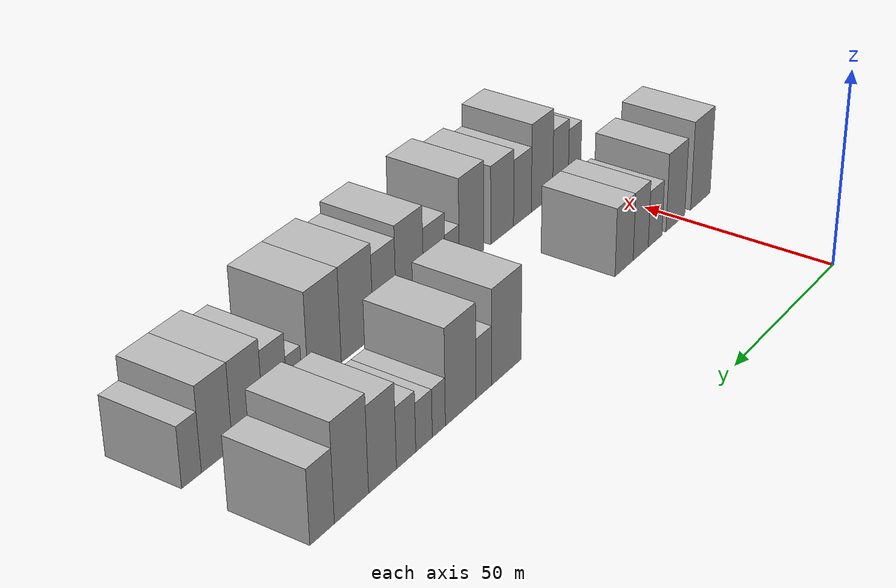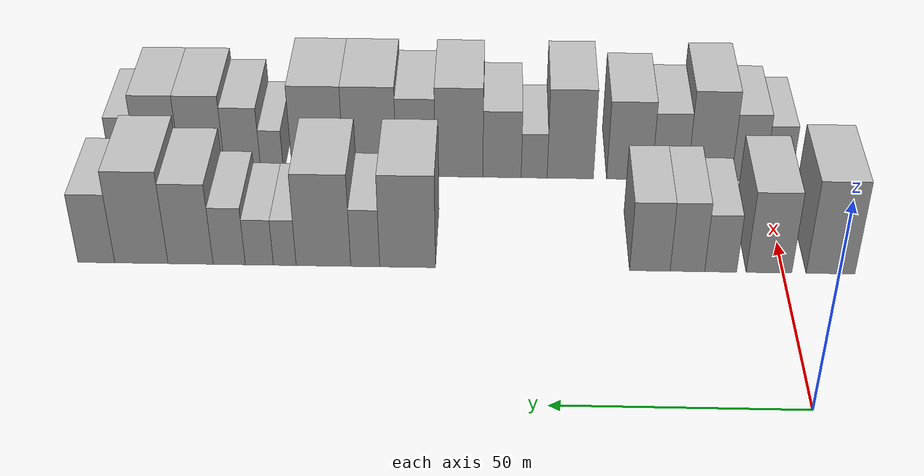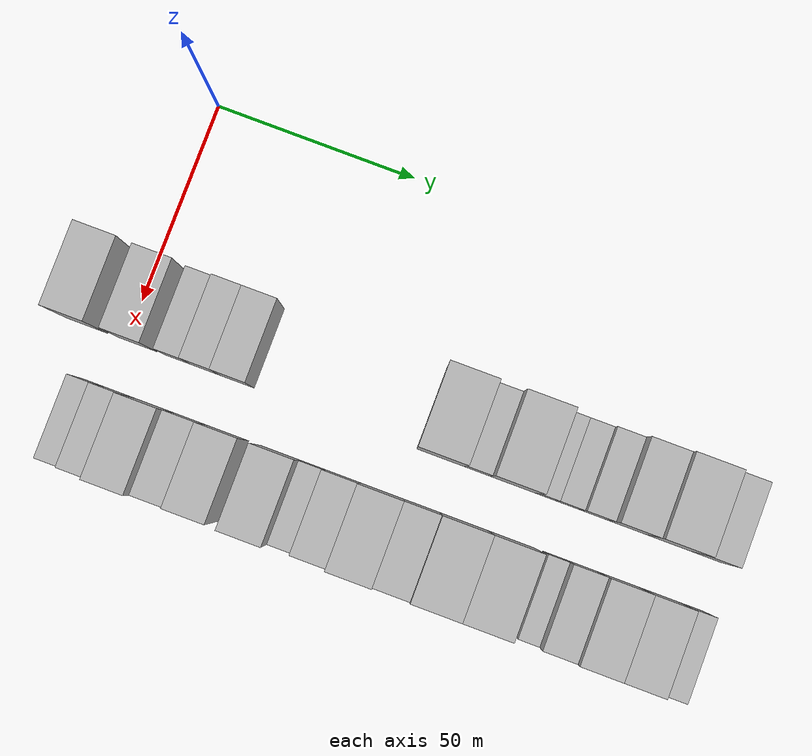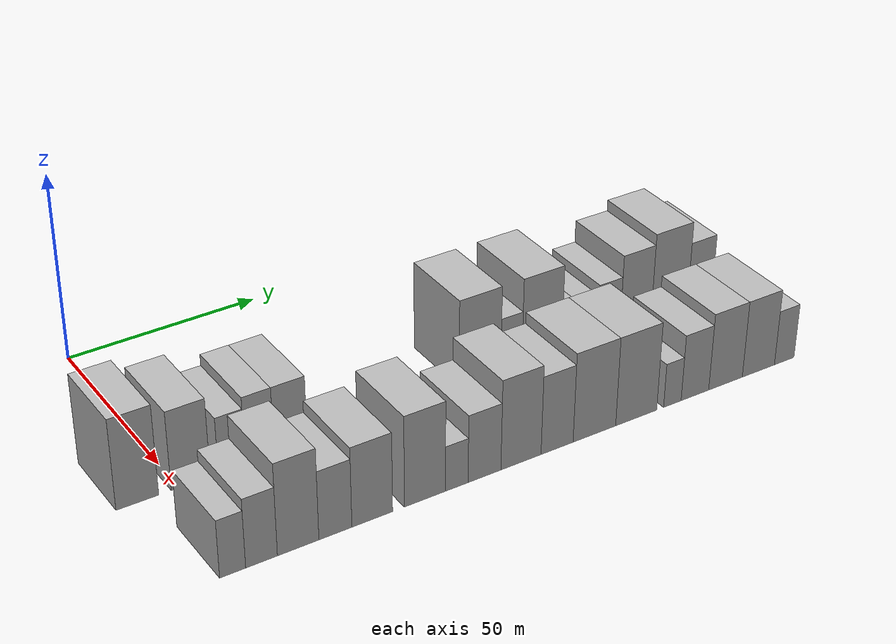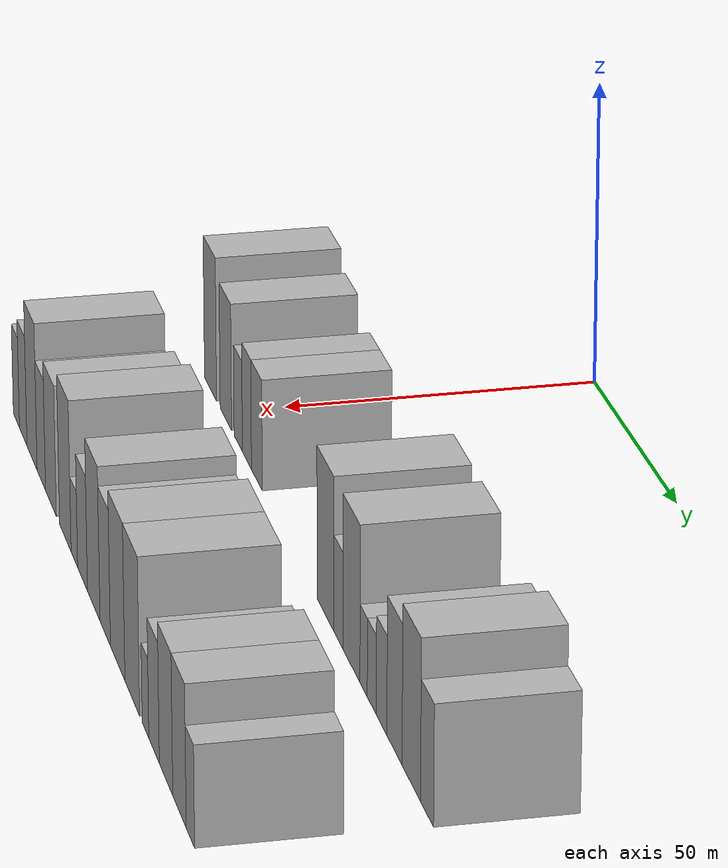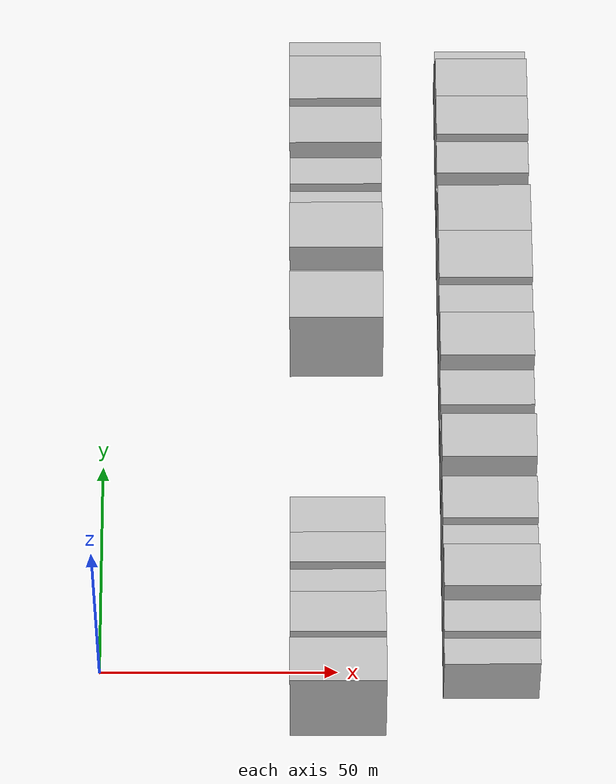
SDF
<sdf version="1.6">
 <world name="default">
  <model name="building_32">
   <static>1</static>
   <pose>50.0000 -9.8697 0 0.000000 0.000000 0.000000</pose>
   <link name="link">
    <pose>0 0 12.00 0 0 0</pose>
    <collision name="collision"><geometry><box><size>20.0000 10.1728 24.0000</size></box></geometry></collision>
    <visual name="visual">
     <cast_shadows>0</cast_shadows>
     <geometry><box><size>20.0000 10.1728 24.0000</size></box></geometry>
     <material>
      <script>
       <uri>model://HANNAS_wall/materials/scripts</uri>
       <uri>model://HANNAS_wall/materials/textures</uri>
       <name>vrc/HANNAS_wall</name>
      </script>
     </material>
    </visual>
   </link>
  </model>
  <model name="building_33">
   <static>1</static>
   <pose>50.0000 2.9684 0 0.000000 0.000000 0.000000</pose>
   <link name="link">
    <pose>0 0 10.50 0 0 0</pose>
    <collision name="collision"><geometry><box><size>20.0000 9.5035 21.0000</size></box></geometry></collision>
    <visual name="visual">
     <cast_shadows>0</cast_shadows>
     <geometry><box><size>20.0000 9.5035 21.0000</size></box></geometry>
     <material>
      <script>
       <uri>model://HANNAS_wall/materials/scripts</uri>
       <uri>model://HANNAS_wall/materials/textures</uri>
       <name>vrc/HANNAS_wall</name>
      </script>
     </material>
    </visual>
   </link>
  </model>
  <model name="building_34">
   <static>1</static>
   <pose>50.0000 13.0650 0 0.000000 0.000000 0.000000</pose>
   <link name="link">
    <pose>0 0 7.50 0 0 0</pose>
    <collision name="collision"><geometry><box><size>20.0000 6.6897 15.0000</size></box></geometry></collision>
    <visual name="visual">
     <cast_shadows>0</cast_shadows>
     <geometry><box><size>20.0000 6.6897 15.0000</size></box></geometry>
     <material>
      <script>
       <uri>model://HANNAS_wall/materials/scripts</uri>
       <uri>model://HANNAS_wall/materials/textures</uri>
       <name>vrc/HANNAS_wall</name>
      </script>
     </material>
    </visual>
   </link>
  </model>
  <model name="building_35">
   <static>1</static>
   <pose>50.0000 20.0244 0 0.000000 0.000000 0.000000</pose>
   <link name="link">
    <pose>0 0 9.00 0 0 0</pose>
    <collision name="collision"><geometry><box><size>20.0000 7.2292 18.0000</size></box></geometry></collision>
    <visual name="visual">
     <cast_shadows>0</cast_shadows>
     <geometry><box><size>20.0000 7.2292 18.0000</size></box></geometry>
     <material>
      <script>
       <uri>model://HANNAS_wall/materials/scripts</uri>
       <uri>model://HANNAS_wall/materials/textures</uri>
       <name>vrc/HANNAS_wall</name>
      </script>
     </material>
    </visual>
   </link>
  </model>
  <model name="building_36">
   <static>1</static>
   <pose>50.0000 27.8837 0 0.000000 0.000000 0.000000</pose>
   <link name="link">
    <pose>0 0 9.00 0 0 0</pose>
    <collision name="collision"><geometry><box><size>20.0000 8.4892 18.0000</size></box></geometry></collision>
    <visual name="visual">
     <cast_shadows>0</cast_shadows>
     <geometry><box><size>20.0000 8.4892 18.0000</size></box></geometry>
     <material>
      <script>
       <uri>model://HANNAS_wall/materials/scripts</uri>
       <uri>model://HANNAS_wall/materials/textures</uri>
       <name>vrc/HANNAS_wall</name>
      </script>
     </material>
    </visual>
   </link>
  </model>
  <model name="building_37">
   <static>1</static>
   <pose>50.0000 78.7567 0 0.000000 0.000000 0.000000</pose>
   <link name="link">
    <pose>0 0 12.00 0 0 0</pose>
    <collision name="collision"><geometry><box><size>20.0000 11.7523 24.0000</size></box></geometry></collision>
    <visual name="visual">
     <cast_shadows>0</cast_shadows>
     <geometry><box><size>20.0000 11.7523 24.0000</size></box></geometry>
     <material>
      <script>
       <uri>model://HANNAS_wall/materials/scripts</uri>
       <uri>model://HANNAS_wall/materials/textures</uri>
       <name>vrc/HANNAS_wall</name>
      </script>
     </material>
    </visual>
   </link>
  </model>
  <model name="building_38">
   <static>1</static>
   <pose>50.0000 87.6733 0 0.000000 0.000000 0.000000</pose>
   <link name="link">
    <pose>0 0 7.50 0 0 0</pose>
    <collision name="collision"><geometry><box><size>20.0000 6.0810 15.0000</size></box></geometry></collision>
    <visual name="visual">
     <cast_shadows>0</cast_shadows>
     <geometry><box><size>20.0000 6.0810 15.0000</size></box></geometry>
     <material>
      <script>
       <uri>model://HANNAS_wall/materials/scripts</uri>
       <uri>model://HANNAS_wall/materials/textures</uri>
       <name>vrc/HANNAS_wall</name>
      </script>
     </material>
    </visual>
   </link>
  </model>
  <model name="building_39">
   <static>1</static>
   <pose>50.0000 96.4820 0 0.000000 0.000000 0.000000</pose>
   <link name="link">
    <pose>0 0 12.00 0 0 0</pose>
    <collision name="collision"><geometry><box><size>20.0000 11.5364 24.0000</size></box></geometry></collision>
    <visual name="visual">
     <cast_shadows>0</cast_shadows>
     <geometry><box><size>20.0000 11.5364 24.0000</size></box></geometry>
     <material>
      <script>
       <uri>model://HANNAS_wall/materials/scripts</uri>
       <uri>model://HANNAS_wall/materials/textures</uri>
       <name>vrc/HANNAS_wall</name>
      </script>
     </material>
    </visual>
   </link>
  </model>
  <model name="building_40">
   <static>1</static>
   <pose>50.0000 104.6592 0 0.000000 0.000000 0.000000</pose>
   <link name="link">
    <pose>0 0 6.00 0 0 0</pose>
    <collision name="collision"><geometry><box><size>20.0000 4.8180 12.0000</size></box></geometry></collision>
    <visual name="visual">
     <cast_shadows>0</cast_shadows>
     <geometry><box><size>20.0000 4.8180 12.0000</size></box></geometry>
     <material>
      <script>
       <uri>model://HANNAS_wall/materials/scripts</uri>
       <uri>model://HANNAS_wall/materials/textures</uri>
       <name>vrc/HANNAS_wall</name>
      </script>
     </material>
    </visual>
   </link>
  </model>
  <model name="building_41">
   <static>1</static>
   <pose>50.0000 110.0333 0 0.000000 0.000000 0.000000</pose>
   <link name="link">
    <pose>0 0 6.00 0 0 0</pose>
    <collision name="collision"><geometry><box><size>20.0000 5.9301 12.0000</size></box></geometry></collision>
    <visual name="visual">
     <cast_shadows>0</cast_shadows>
     <geometry><box><size>20.0000 5.9301 12.0000</size></box></geometry>
     <material>
      <script>
       <uri>model://HANNAS_wall/materials/scripts</uri>
       <uri>model://HANNAS_wall/materials/textures</uri>
       <name>vrc/HANNAS_wall</name>
      </script>
     </material>
    </visual>
   </link>
  </model>
  <model name="building_42">
   <static>1</static>
   <pose>50.0000 116.3993 0 0.000000 0.000000 0.000000</pose>
   <link name="link">
    <pose>0 0 7.50 0 0 0</pose>
    <collision name="collision"><geometry><box><size>20.0000 6.8020 15.0000</size></box></geometry></collision>
    <visual name="visual">
     <cast_shadows>0</cast_shadows>
     <geometry><box><size>20.0000 6.8020 15.0000</size></box></geometry>
     <material>
      <script>
       <uri>model://HANNAS_wall/materials/scripts</uri>
       <uri>model://HANNAS_wall/materials/textures</uri>
       <name>vrc/HANNAS_wall</name>
      </script>
     </material>
    </visual>
   </link>
  </model>
  <model name="building_43">
   <static>1</static>
   <pose>50.0000 124.5717 0 0.000000 0.000000 0.000000</pose>
   <link name="link">
    <pose>0 0 10.50 0 0 0</pose>
    <collision name="collision"><geometry><box><size>20.0000 9.5428 21.0000</size></box></geometry></collision>
    <visual name="visual">
     <cast_shadows>0</cast_shadows>
     <geometry><box><size>20.0000 9.5428 21.0000</size></box></geometry>
     <material>
      <script>
       <uri>model://HANNAS_wall/materials/scripts</uri>
       <uri>model://HANNAS_wall/materials/textures</uri>
       <name>vrc/HANNAS_wall</name>
      </script>
     </material>
    </visual>
   </link>
  </model>
  <model name="building_44">
   <static>1</static>
   <pose>50.0000 134.9854 0 0.000000 0.000000 0.000000</pose>
   <link name="link">
    <pose>0 0 12.00 0 0 0</pose>
    <collision name="collision"><geometry><box><size>20.0000 11.2845 24.0000</size></box></geometry></collision>
    <visual name="visual">
     <cast_shadows>0</cast_shadows>
     <geometry><box><size>20.0000 11.2845 24.0000</size></box></geometry>
     <material>
      <script>
       <uri>model://HANNAS_wall/materials/scripts</uri>
       <uri>model://HANNAS_wall/materials/textures</uri>
       <name>vrc/HANNAS_wall</name>
      </script>
     </material>
    </visual>
   </link>
  </model>
  <model name="building_45">
   <static>1</static>
   <pose>50.0000 144.5385 0 0.000000 0.000000 0.000000</pose>
   <link name="link">
    <pose>0 0 9.00 0 0 0</pose>
    <collision name="collision"><geometry><box><size>20.0000 7.8218 18.0000</size></box></geometry></collision>
    <visual name="visual">
     <cast_shadows>0</cast_shadows>
     <geometry><box><size>20.0000 7.8218 18.0000</size></box></geometry>
     <material>
      <script>
       <uri>model://HANNAS_wall/materials/scripts</uri>
       <uri>model://HANNAS_wall/materials/textures</uri>
       <name>vrc/HANNAS_wall</name>
      </script>
     </material>
    </visual>
   </link>
  </model>
  <model name="building_92">
   <static>1</static>
   <pose>82.0000 -3.2545 0 0.000000 0.000000 0.000000</pose>
   <link name="link">
    <pose>0 0 7.50 0 0 0</pose>
    <collision name="collision"><geometry><box><size>20.0000 6.0596 15.0000</size></box></geometry></collision>
    <visual name="visual">
     <cast_shadows>0</cast_shadows>
     <geometry><box><size>20.0000 6.0596 15.0000</size></box></geometry>
     <material>
      <script>
       <uri>model://HANNAS_wall/materials/scripts</uri>
       <uri>model://HANNAS_wall/materials/textures</uri>
       <name>vrc/HANNAS_wall</name>
      </script>
     </material>
    </visual>
   </link>
  </model>
  <model name="building_93">
   <static>1</static>
   <pose>82.0000 3.5081 0 0.000000 0.000000 0.000000</pose>
   <link name="link">
    <pose>0 0 9.00 0 0 0</pose>
    <collision name="collision"><geometry><box><size>20.0000 7.4657 18.0000</size></box></geometry></collision>
    <visual name="visual">
     <cast_shadows>0</cast_shadows>
     <geometry><box><size>20.0000 7.4657 18.0000</size></box></geometry>
     <material>
      <script>
       <uri>model://HANNAS_wall/materials/scripts</uri>
       <uri>model://HANNAS_wall/materials/textures</uri>
       <name>vrc/HANNAS_wall</name>
      </script>
     </material>
    </visual>
   </link>
  </model>
  <model name="building_94">
   <static>1</static>
   <pose>82.0000 12.2098 0 0.000000 0.000000 0.000000</pose>
   <link name="link">
    <pose>0 0 12.00 0 0 0</pose>
    <collision name="collision"><geometry><box><size>20.0000 9.9377 24.0000</size></box></geometry></collision>
    <visual name="visual">
     <cast_shadows>0</cast_shadows>
     <geometry><box><size>20.0000 9.9377 24.0000</size></box></geometry>
     <material>
      <script>
       <uri>model://HANNAS_wall/materials/scripts</uri>
       <uri>model://HANNAS_wall/materials/textures</uri>
       <name>vrc/HANNAS_wall</name>
      </script>
     </material>
    </visual>
   </link>
  </model>
  <model name="building_95">
   <static>1</static>
   <pose>82.0000 21.2089 0 0.000000 0.000000 0.000000</pose>
   <link name="link">
    <pose>0 0 9.00 0 0 0</pose>
    <collision name="collision"><geometry><box><size>20.0000 8.0606 18.0000</size></box></geometry></collision>
    <visual name="visual">
     <cast_shadows>0</cast_shadows>
     <geometry><box><size>20.0000 8.0606 18.0000</size></box></geometry>
     <material>
      <script>
       <uri>model://HANNAS_wall/materials/scripts</uri>
       <uri>model://HANNAS_wall/materials/textures</uri>
       <name>vrc/HANNAS_wall</name>
      </script>
     </material>
    </visual>
   </link>
  </model>
  <model name="building_96">
   <static>1</static>
   <pose>82.0000 30.3054 0 0.000000 0.000000 0.000000</pose>
   <link name="link">
    <pose>0 0 10.50 0 0 0</pose>
    <collision name="collision"><geometry><box><size>20.0000 10.1323 21.0000</size></box></geometry></collision>
    <visual name="visual">
     <cast_shadows>0</cast_shadows>
     <geometry><box><size>20.0000 10.1323 21.0000</size></box></geometry>
     <material>
      <script>
       <uri>model://HANNAS_wall/materials/scripts</uri>
       <uri>model://HANNAS_wall/materials/textures</uri>
       <name>vrc/HANNAS_wall</name>
      </script>
     </material>
    </visual>
   </link>
  </model>
  <model name="building_97">
   <static>1</static>
   <pose>82.0000 43.6037 0 0.000000 0.000000 0.000000</pose>
   <link name="link">
    <pose>0 0 12.00 0 0 0</pose>
    <collision name="collision"><geometry><box><size>20.0000 10.4644 24.0000</size></box></geometry></collision>
    <visual name="visual">
     <cast_shadows>0</cast_shadows>
     <geometry><box><size>20.0000 10.4644 24.0000</size></box></geometry>
     <material>
      <script>
       <uri>model://HANNAS_wall/materials/scripts</uri>
       <uri>model://HANNAS_wall/materials/textures</uri>
       <name>vrc/HANNAS_wall</name>
      </script>
     </material>
    </visual>
   </link>
  </model>
  <model name="building_98">
   <static>1</static>
   <pose>82.0000 51.7775 0 0.000000 0.000000 0.000000</pose>
   <link name="link">
    <pose>0 0 6.00 0 0 0</pose>
    <collision name="collision"><geometry><box><size>20.0000 5.8832 12.0000</size></box></geometry></collision>
    <visual name="visual">
     <cast_shadows>0</cast_shadows>
     <geometry><box><size>20.0000 5.8832 12.0000</size></box></geometry>
     <material>
      <script>
       <uri>model://HANNAS_wall/materials/scripts</uri>
       <uri>model://HANNAS_wall/materials/textures</uri>
       <name>vrc/HANNAS_wall</name>
      </script>
     </material>
    </visual>
   </link>
  </model>
  <model name="building_99">
   <static>1</static>
   <pose>82.0000 59.0478 0 0.000000 0.000000 0.000000</pose>
   <link name="link">
    <pose>0 0 9.00 0 0 0</pose>
    <collision name="collision"><geometry><box><size>20.0000 8.6574 18.0000</size></box></geometry></collision>
    <visual name="visual">
     <cast_shadows>0</cast_shadows>
     <geometry><box><size>20.0000 8.6574 18.0000</size></box></geometry>
     <material>
      <script>
       <uri>model://HANNAS_wall/materials/scripts</uri>
       <uri>model://HANNAS_wall/materials/textures</uri>
       <name>vrc/HANNAS_wall</name>
      </script>
     </material>
    </visual>
   </link>
  </model>
  <model name="building_100">
   <static>1</static>
   <pose>82.0000 68.7750 0 0.000000 0.000000 0.000000</pose>
   <link name="link">
    <pose>0 0 12.00 0 0 0</pose>
    <collision name="collision"><geometry><box><size>20.0000 10.7970 24.0000</size></box></geometry></collision>
    <visual name="visual">
     <cast_shadows>0</cast_shadows>
     <geometry><box><size>20.0000 10.7970 24.0000</size></box></geometry>
     <material>
      <script>
       <uri>model://HANNAS_wall/materials/scripts</uri>
       <uri>model://HANNAS_wall/materials/textures</uri>
       <name>vrc/HANNAS_wall</name>
      </script>
     </material>
    </visual>
   </link>
  </model>
  <model name="building_101">
   <static>1</static>
   <pose>82.0000 78.5691 0 0.000000 0.000000 0.000000</pose>
   <link name="link">
    <pose>0 0 10.50 0 0 0</pose>
    <collision name="collision"><geometry><box><size>20.0000 8.7911 21.0000</size></box></geometry></collision>
    <visual name="visual">
     <cast_shadows>0</cast_shadows>
     <geometry><box><size>20.0000 8.7911 21.0000</size></box></geometry>
     <material>
      <script>
       <uri>model://HANNAS_wall/materials/scripts</uri>
       <uri>model://HANNAS_wall/materials/textures</uri>
       <name>vrc/HANNAS_wall</name>
      </script>
     </material>
    </visual>
   </link>
  </model>
  <model name="building_102">
   <static>1</static>
   <pose>82.0000 88.9251 0 0.000000 0.000000 0.000000</pose>
   <link name="link">
    <pose>0 0 12.00 0 0 0</pose>
    <collision name="collision"><geometry><box><size>20.0000 11.9211 24.0000</size></box></geometry></collision>
    <visual name="visual">
     <cast_shadows>0</cast_shadows>
     <geometry><box><size>20.0000 11.9211 24.0000</size></box></geometry>
     <material>
      <script>
       <uri>model://HANNAS_wall/materials/scripts</uri>
       <uri>model://HANNAS_wall/materials/textures</uri>
       <name>vrc/HANNAS_wall</name>
      </script>
     </material>
    </visual>
   </link>
  </model>
  <model name="building_103">
   <static>1</static>
   <pose>82.0000 100.7588 0 0.000000 0.000000 0.000000</pose>
   <link name="link">
    <pose>0 0 12.00 0 0 0</pose>
    <collision name="collision"><geometry><box><size>20.0000 11.7463 24.0000</size></box></geometry></collision>
    <visual name="visual">
     <cast_shadows>0</cast_shadows>
     <geometry><box><size>20.0000 11.7463 24.0000</size></box></geometry>
     <material>
      <script>
       <uri>model://HANNAS_wall/materials/scripts</uri>
       <uri>model://HANNAS_wall/materials/textures</uri>
       <name>vrc/HANNAS_wall</name>
      </script>
     </material>
    </visual>
   </link>
  </model>
  <model name="building_104">
   <static>1</static>
   <pose>82.0000 111.1938 0 0.000000 0.000000 0.000000</pose>
   <link name="link">
    <pose>0 0 6.00 0 0 0</pose>
    <collision name="collision"><geometry><box><size>20.0000 5.1237 12.0000</size></box></geometry></collision>
    <visual name="visual">
     <cast_shadows>0</cast_shadows>
     <geometry><box><size>20.0000 5.1237 12.0000</size></box></geometry>
     <material>
      <script>
       <uri>model://HANNAS_wall/materials/scripts</uri>
       <uri>model://HANNAS_wall/materials/textures</uri>
       <name>vrc/HANNAS_wall</name>
      </script>
     </material>
    </visual>
   </link>
  </model>
  <model name="building_105">
   <static>1</static>
   <pose>82.0000 117.8300 0 0.000000 0.000000 0.000000</pose>
   <link name="link">
    <pose>0 0 9.00 0 0 0</pose>
    <collision name="collision"><geometry><box><size>20.0000 8.1486 18.0000</size></box></geometry></collision>
    <visual name="visual">
     <cast_shadows>0</cast_shadows>
     <geometry><box><size>20.0000 8.1486 18.0000</size></box></geometry>
     <material>
      <script>
       <uri>model://HANNAS_wall/materials/scripts</uri>
       <uri>model://HANNAS_wall/materials/textures</uri>
       <name>vrc/HANNAS_wall</name>
      </script>
     </material>
    </visual>
   </link>
  </model>
  <model name="building_106">
   <static>1</static>
   <pose>82.0000 126.9650 0 0.000000 0.000000 0.000000</pose>
   <link name="link">
    <pose>0 0 10.50 0 0 0</pose>
    <collision name="collision"><geometry><box><size>20.0000 10.1215 21.0000</size></box></geometry></collision>
    <visual name="visual">
     <cast_shadows>0</cast_shadows>
     <geometry><box><size>20.0000 10.1215 21.0000</size></box></geometry>
     <material>
      <script>
       <uri>model://HANNAS_wall/materials/scripts</uri>
       <uri>model://HANNAS_wall/materials/textures</uri>
       <name>vrc/HANNAS_wall</name>
      </script>
     </material>
    </visual>
   </link>
  </model>
  <model name="building_107">
   <static>1</static>
   <pose>82.0000 136.9508 0 0.000000 0.000000 0.000000</pose>
   <link name="link">
    <pose>0 0 10.50 0 0 0</pose>
    <collision name="collision"><geometry><box><size>20.0000 9.8501 21.0000</size></box></geometry></collision>
    <visual name="visual">
     <cast_shadows>0</cast_shadows>
     <geometry><box><size>20.0000 9.8501 21.0000</size></box></geometry>
     <material>
      <script>
       <uri>model://HANNAS_wall/materials/scripts</uri>
       <uri>model://HANNAS_wall/materials/textures</uri>
       <name>vrc/HANNAS_wall</name>
      </script>
     </material>
    </visual>
   </link>
  </model>
  <model name="building_108">
   <static>1</static>
   <pose>82.0000 144.9129 0 0.000000 0.000000 0.000000</pose>
   <link name="link">
    <pose>0 0 7.50 0 0 0</pose>
    <collision name="collision"><geometry><box><size>20.0000 6.0741 15.0000</size></box></geometry></collision>
    <visual name="visual">
     <cast_shadows>0</cast_shadows>
     <geometry><box><size>20.0000 6.0741 15.0000</size></box></geometry>
     <material>
      <script>
       <uri>model://HANNAS_wall/materials/scripts</uri>
       <uri>model://HANNAS_wall/materials/textures</uri>
       <name>vrc/HANNAS_wall</name>
      </script>
     </material>
    </visual>
   </link>
  </model>
 </world>
</sdf>
